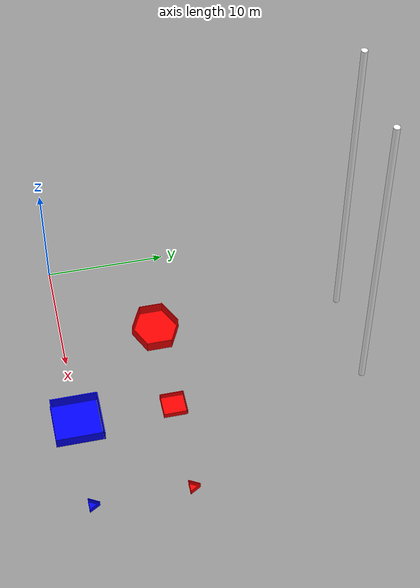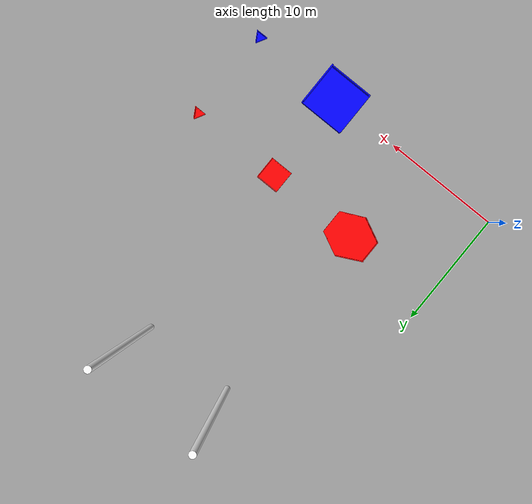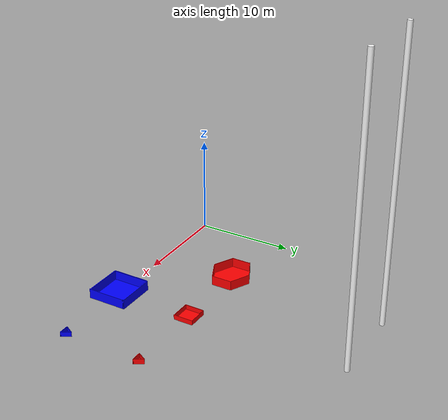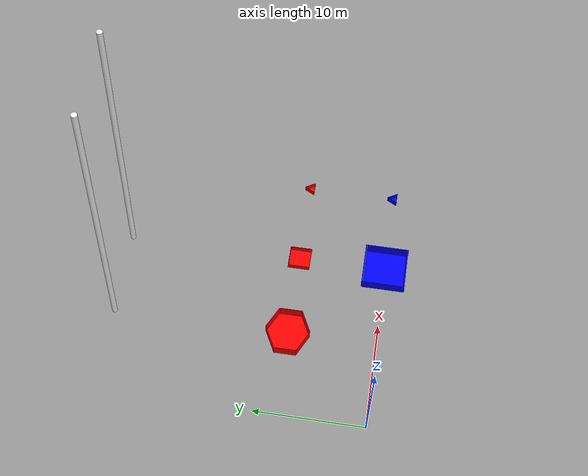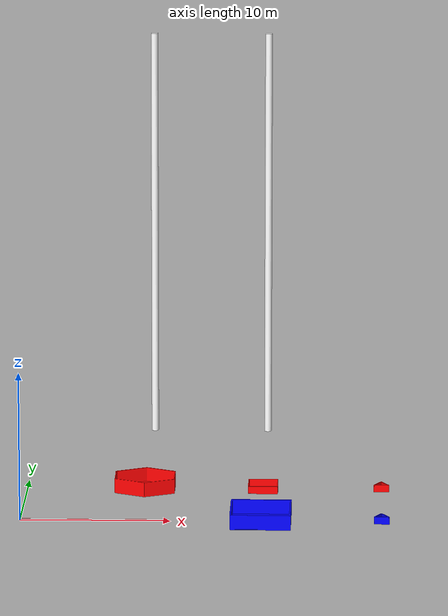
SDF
<sdf version="1.9">
 <world name="iris_showcase">
  <physics name="1ms" type="ignore">
   <max_step_size>0.001</max_step_size>
   <real_time_factor>1.0</real_time_factor>
  </physics>
  <plugin filename="gz-sim-physics-system" name="gz::sim::systems::Physics"/>
  <plugin filename="gz-sim-sensors-system" name="gz::sim::systems::Sensors">
   <render_engine>ogre2</render_engine>
  </plugin>
  <plugin filename="gz-sim-user-commands-system" name="gz::sim::systems::UserCommands"/>
  <plugin filename="gz-sim-scene-broadcaster-system" name="gz::sim::systems::SceneBroadcaster"/>
  <plugin filename="gz-sim-imu-system" name="gz::sim::systems::Imu"/>
  <plugin filename="gz-sim-navsat-system" name="gz::sim::systems::NavSat"/>
  <scene><ambient>1.0 1.0 1.0</ambient><background>0.8 0.8 0.8</background></scene>
  <spherical_coordinates>
   <latitude_deg>-35.363262</latitude_deg>
   <longitude_deg>149.165237</longitude_deg>
   <elevation>584</elevation>
   <heading_deg>0</heading_deg>
   <surface_model>EARTH_WGS84</surface_model>
  </spherical_coordinates>
  <light type="directional" name="sun">
   <pose>0 0 10 0 0 0</pose>
   <diffuse>0.8 0.8 0.8 1</diffuse>
   <specular>0.8 0.8 0.8 1</specular>
   <attenuation>
    <range>1000</range>
    <constant>0.9</constant>
    <linear>0.01</linear>
    <quadratic>0.001</quadratic>
   </attenuation>
   <direction>-0.5 0.1 -0.9</direction>
  </light>
  <model name="axes">
   <static>1</static>
   <link name="link">
    <visual name="r">
     <cast_shadows>0</cast_shadows>
     <pose>5 0 0.1 0 0 0</pose>
     <geometry><box><size>10 0.01 0.01</size></box></geometry>
     <material>
      <ambient>1 0 0 0.8</ambient>
      <diffuse>1 0 0 0.8</diffuse>
      <emissive>1 0 0 0.8</emissive>
      <specular>0.5 0.5 0.5 0.8</specular>
     </material>
    </visual>
    <visual name="g">
     <cast_shadows>0</cast_shadows>
     <pose>0 5 0.1 0 0 0</pose>
     <geometry><box><size>0.01 10 0.01</size></box></geometry>
     <material>
      <ambient>0 1 0 0.8</ambient>
      <diffuse>0 1 0 0.8</diffuse>
      <emissive>0 1 0 0.8</emissive>
      <specular>0.5 0.5 0.5 0.8</specular>
     </material>
    </visual>
    <visual name="b">
     <cast_shadows>0</cast_shadows>
     <pose>0 0 5.1 0 0 0</pose>
     <geometry><box><size>0.01 0.01 10</size></box></geometry>
     <material>
      <ambient>0 0 1 0.8</ambient>
      <diffuse>0 0 1 0.8</diffuse>
      <emissive>0 0 1 0.8</emissive>
      <specular>0.5 0.5 0.5 0.8</specular>
     </material>
    </visual>
    <sensor name="navsat_sensor" type="navsat"><always_on>1</always_on><update_rate>1</update_rate></sensor>
   </link>
  </model>
  <include><uri>model://blue_square</uri><pose>16 0 0 0 0 0</pose></include>
  <include><uri>model://blue_triangle</uri><pose>24 0 0 0 0 0</pose></include>
  <include><uri>model://red_hexagon</uri><pose>8 8 0 0 0 0</pose></include>
  <include><uri>model://red_square</uri><pose>16 8 0 0 0 0</pose></include>
  <include><uri>model://red_triangle</uri><pose>24 8 0 0 0 0</pose></include>
  <include><name>white_pole_1</name><uri>model://white_pole</uri><pose>8 24 0 0 0 0</pose></include>
  <include><name>white_pole_2</name><uri>model://white_pole</uri><pose>16 24 0 0 0 0</pose></include>
 </world>
</sdf>

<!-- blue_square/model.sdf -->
<sdf version="1.6">
  <model name="blue_square">
    <static>true</static>

    <link name="link">

      <!-- MESH -->
      <visual name="visual">
        <geometry>
          <mesh>
            <uri>model://blue_square/meshes/square.stl</uri>
            <scale>1 1 1</scale>
          </mesh>
        </geometry>

        <!-- MATERIAL -->
        <material>
          <!-- Blue on Ambient Lightning -->
          <ambient>0 0 1 1</ambient>
          <!-- Perfect Blue on Camera  -->
          <diffuse>0 0 1 1</diffuse>
          <!-- Prevents Reflections -->
          <specular>0 0 0 1</specular>
        </material>
      </visual>

      <!-- COLLISION -->
      <collision name="collision">
        <geometry>
          <cylinder>
            <radius>0.15</radius>
            <length>0.02</length>
          </cylinder>
        </geometry>
      </collision>

    </link>
  </model>
</sdf>

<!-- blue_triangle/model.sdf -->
<sdf version="1.6">
  <model name="blue_triangle">
    <static>true</static>

    <link name="link">

      <!-- MESH -->
      <visual name="visual">
        <geometry>
          <mesh>
            <uri>model://blue_triangle/meshes/triangle.stl</uri>
            <scale>1 1 1</scale>
          </mesh>
        </geometry>

        <!-- MATERIAL -->
        <material>
          <!-- Blue on Ambient Lightning -->
          <ambient>0 0 1 1</ambient>
          <!-- Perfect Blue on Camera -->
          <diffuse>0 0 1 1</diffuse>
          <!-- Prevents Reflections -->
          <specular>0 0 0 1</specular>
        </material>
      </visual>

      <!-- COLLISION -->
      <collision name="collision">
        <geometry>
          <cylinder>
            <radius>0.15</radius>
            <length>0.02</length>
          </cylinder>
        </geometry>
      </collision>

    </link>
  </model>
</sdf>

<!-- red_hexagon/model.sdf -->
<sdf version="1.6">
  <model name="red_hexagon">
    <static>true</static>

    <link name="link">

      <!-- MESH -->
      <visual name="visual">
        <geometry>
          <mesh>
            <uri>model://red_hexagon/meshes/hexagon.stl</uri>
            <scale>1 1 1</scale>
          </mesh>
        </geometry>

        <!-- MATERIAL -->
        <material>
          <!-- Red on Ambient Lightning -->
          <ambient>1 0 0 1</ambient>
          <!-- Perfect Red on Camera -->
          <diffuse>1 0 0 1</diffuse>
          <!-- Prevents Reflections -->
          <specular>0 0 0 1</specular>
        </material>
      </visual>

      <!-- COLLISION -->
      <collision name="collision">
        <geometry>
          <cylinder>
            <radius>0.15</radius>
            <length>0.02</length>
          </cylinder>
        </geometry>
      </collision>

    </link>
  </model>
</sdf>

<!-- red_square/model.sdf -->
<sdf version="1.6">
  <model name="red_square">
    <static>true</static>

    <link name="link">

      <!-- MESH -->
      <visual name="visual">
        <geometry>
          <mesh>
            <uri>model://red_square/meshes/square.stl</uri>
            <scale>0.5 0.5 0.5</scale>
          </mesh>
        </geometry>

        <!-- MATERIAL -->
        <material>
          <!-- Red on Ambient Lightning -->
          <ambient>1 0 0 1</ambient>
          <!-- Perfect Red on Camera -->
          <diffuse>1 0 0 1</diffuse>
          <!-- Prevents Reflections -->
          <specular>0 0 0 1</specular>
        </material>
      </visual>

      <!-- COLLISION -->
      <collision name="collision">
        <geometry>
          <cylinder>
            <radius>0.15</radius>
            <length>0.02</length>
          </cylinder>
        </geometry>
      </collision>

    </link>
  </model>
</sdf>

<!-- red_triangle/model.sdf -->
<sdf version="1.6">
  <model name="red_triangle">
    <static>true</static>

    <link name="link">

      <!-- MESH -->
      <visual name="visual">
        <geometry>
          <mesh>
            <uri>model://red_triangle/meshes/triangle.stl</uri>
            <scale>1 1 1</scale>
          </mesh>
        </geometry>

        <!-- MATERIAL -->
        <material>
          <!-- Red on Ambient Lightning -->
          <ambient>1 0 0 1</ambient>
          <!-- Perfect Red on Camera -->
          <diffuse>1 0 0 1</diffuse>
          <!-- Prevents Reflections -->
          <specular>0 0 0 1</specular>
        </material>
      </visual>

      <!-- COLLISION -->
      <collision name="collision">
        <geometry>
          <cylinder>
            <radius>0.15</radius>
            <length>0.02</length>
          </cylinder>
        </geometry>
      </collision>

    </link>
  </model>
</sdf>

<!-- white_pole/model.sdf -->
<sdf version="1.6">
  <model name="white_pole">
    <static>true</static>

    <link name="link">

      <!-- MESH -->
      <visual name="visual">
        <geometry>
          <mesh>
            <uri>model://white_pole/meshes/pole.stl</uri>
            <scale>1 1 1</scale>
          </mesh>
        </geometry>

        <!-- MATERIAL -->
        <material>
          <!-- White on Ambient Lightning -->
          <ambient>1 1 1 1</ambient>
          <!-- Perfect White on Camera -->
          <diffuse>1 1 1 1</diffuse>
          <!-- Prevents Reflections -->
          <specular>0 0 0 1</specular>
        </material>
      </visual>

      <!-- COLLISION -->
      <collision name="collision">
        <geometry>
          <cylinder>
            <radius>0.15</radius>
            <length>0.02</length>
          </cylinder>
        </geometry>
      </collision>

    </link>
  </model>
</sdf>
